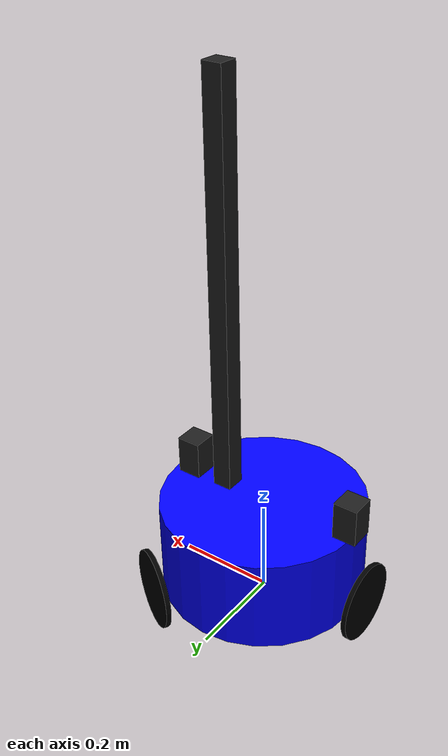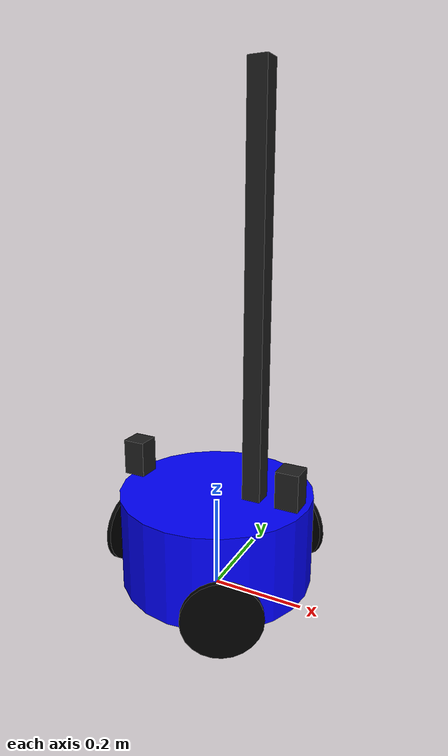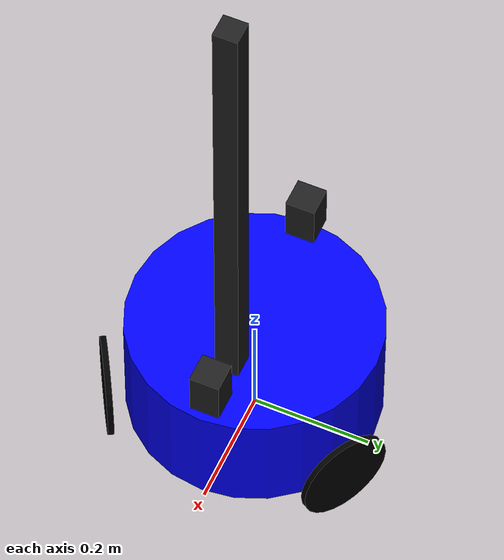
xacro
<?xml version="1.0"?>
<robot name="vujicic" xmlns:xacro="http://www.ros.org/wiki/xacro">
  <xacro:property name="base_radius" value="0.21"/>
  <xacro:property name="base_height" value="0.2"/>
  <xacro:property name="base_mass"   value="20.0"/>
  <xacro:property name="wheel_radius" value="0.08"/>
  <xacro:property name="wheel_width"  value="0.01"/>
  <xacro:property name="wheel_mass"   value="0.5"/>
  <xacro:property name="PI" value="3.14159265358979323846"/>

  <xacro:include filename="$(find vujicic_description)/urdf/macros.xacro"/>
  <xacro:include filename="$(find vujicic_description)/urdf/vujicic_base_omni.gazebo"/>

  <!-- MAIN BASE LINK -->
  <link name="base_link"/>
  <link name="base_center">
    <inertial>
      <origin xyz="0 0 0"/>
      <mass value="${base_mass}"/>
      <xacro:cylinder_inertia m="${base_mass}" r="${base_radius}" h="${base_height}"/>
    </inertial>
    <visual>
      <geometry><cylinder radius="${base_radius}" length="${base_height}"/></geometry>
      <material name="base_material"><color rgba="0 0 1 1"/></material>
    </visual>
    <collision>
      <geometry><cylinder radius="${base_radius}" length="${base_height}"/></geometry>
    </collision>
  </link>
  <link name="base_torso_support">
    <inertial>
      <origin xyz="0 0 0"/>
      <mass value="0.5"/>
      <xacro:box_inertia m="0.5" x="0.12" y="0.12" z="0.16"/>
    </inertial>
    <visual>
      <origin xyz="0 0 0.375" rpy="0 0 0"/>
      <geometry> <box size="0.04 0.04 0.9"/></geometry>
      <material name="black"/>
    </visual>
    <collision>
      <origin xyz="0 0 0.375" rpy="0 0 0"/>
      <geometry> <box size="0.04 0.04 0.9"/></geometry>
    </collision>
  </link>
  <joint name="base_joint" type="fixed">
    <parent link="base_link" />
    <child link="base_center" />
    <origin xyz="0 0 0.13"/>
  </joint>
  <joint name="base_torso_support_joint" type="fixed">
    <parent link="base_center" />
    <child link="base_torso_support" />
    <origin xyz="0.09 0 0.121"/>
  </joint>

  <!-- LEFT WHEEL ACTUATOR-->
  <link name="left_wheel_link">
    <inertial>
      <origin xyz="0 0 0"/>
      <mass value="${wheel_mass}"/>
      <xacro:cylinder_inertia m="${wheel_mass}" r="${wheel_radius}" h="${wheel_width}"/>
    </inertial>
    <visual>
      <geometry><cylinder radius="${wheel_radius}" length="${wheel_width}"/></geometry>
      <material name="wheel_material"><color rgba="0 0 0 1"/></material>
    </visual>
    <collision>
      <geometry><cylinder radius="${wheel_radius}" length="${wheel_width}"/></geometry>
    </collision>
  </link>
  <joint name="wheel_left_joint" type="continuous">
    <parent link="base_center" />
    <child link="left_wheel_link" />
    <axis xyz="0 0 1"/>
    <origin xyz="${(base_radius+0.03)*cos( PI/3)} ${(base_radius+0.03)*sin( PI/3)} -0.05" rpy="${PI/2} 0 ${ PI/3+PI/2}"/>
    <limit velocity="30.0" effort="5.0"/>
    <dynamics damping="0.5" friction="0.01"/>
  </joint>

  <!-- RIGHT WHEEL ACTUATOR-->
  <link name="right_wheel_link">
    <inertial>
      <origin xyz="0 0 0"/>
      <mass value="${wheel_mass}"/>
      <xacro:cylinder_inertia m="${wheel_mass}" r="${wheel_radius}" h="${wheel_width}"/>
    </inertial>
    <visual>
      <geometry><cylinder radius="${wheel_radius}" length="${wheel_width}"/></geometry>
      <material name="wheel_material"><color rgba="0 0 0 1"/></material>
    </visual>
    <collision>
      <geometry><cylinder radius="${wheel_radius}" length="${wheel_width}"/></geometry>
    </collision>
  </link>
  <joint name="wheel_right_joint" type="continuous">
    <parent link="base_center" />
    <child link="right_wheel_link" />
    <axis xyz="0 0 1"/>
    <origin xyz="${(base_radius+0.03)*cos(-PI/3)} ${(base_radius+0.03)*sin(-PI/3)} -0.05" rpy="${PI/2} 0 ${-PI/3+PI/2}"/>
    <limit velocity="30.0" effort="5.0"/>
    <dynamics damping="0.5" friction="0.01"/>
  </joint>

  <!-- BACK WHEEL ACTUATOR-->
  <link name="back_wheel_link">
    <inertial>
      <origin xyz="0 0 0"/>
      <mass value="${wheel_mass}"/>
      <xacro:cylinder_inertia m="${wheel_mass}" r="${wheel_radius}" h="${wheel_width}"/>
    </inertial>
    <visual>
      <geometry><cylinder radius="${wheel_radius}" length="${wheel_width}"/></geometry>
      <material name="wheel_material"><color rgba="0 0 0 1"/></material>
    </visual>
    <collision>
      <geometry><cylinder radius="${wheel_radius}" length="${wheel_width}"/></geometry>
    </collision>
  </link>
  <joint name="wheel_back_joint" type="continuous">
    <parent link="base_center" />
    <child link="back_wheel_link" />
    <axis xyz="0 0 1"/>
    <origin xyz="${(base_radius+0.03)*cos(PI)} ${(base_radius+0.03)*sin(PI)} -0.05" rpy="${PI/2} 0 ${PI+PI/2}"/>
    <limit velocity="30.0" effort="5.0"/>
    <dynamics damping="0.5" friction="0.01"/>
  </joint>

  <!-- LASER LINK AND JOINTS-->
  <link name="laser_link">
    <visual>
      <origin xyz="0 0 0" rpy="0 0 0"/>
      <geometry> <box size="0.05 0.05 0.08"/></geometry>
      <material name="black"/>
    </visual>
    <collision>
      <origin xyz="0 0 0" rpy="0 0 0"/>
      <geometry> <box size="0.05 0.05 0.08"/></geometry>
    </collision>
    <inertial>
      <origin xyz="0 0 0" rpy="0 0 0"/>
      <mass value="0.1"/>
      <xacro:box_inertia m="${0.1}" x="${0.05}" y="${0.05}" z="${0.08}"/>
    </inertial>
  </link>
  <link name="laser_link_rear">
    <visual>
      <origin xyz="0 0 0" rpy="0 0 0"/>
      <geometry> <box size="0.05 0.05 0.08"/></geometry>
      <material name="black"/>
    </visual>
    <collision>
      <origin xyz="0 0 0" rpy="0 0 0"/>
      <geometry> <box size="0.05 0.05 0.08"/></geometry>
    </collision>
    <inertial>
      <origin xyz="0 0 0" rpy="0 0 0"/>
      <mass value="0.1"/>
      <xacro:box_inertia m="${0.1}" x="${0.05}" y="${0.05}" z="${0.08}"/>
    </inertial>
  </link>
  <joint name="laser_connect" type="fixed">
    <origin xyz="0.17 0 0.14" />
    <parent link="base_center"/>
    <child link="laser_link"/>
  </joint>
  <joint name="rear_laser_connect" type="fixed">
    <origin xyz="-0.2 0 0.14" rpy="0 0 ${PI}"/>
    <parent link="base_center"/>
    <child link="laser_link_rear"/>
  </joint>
</robot>
